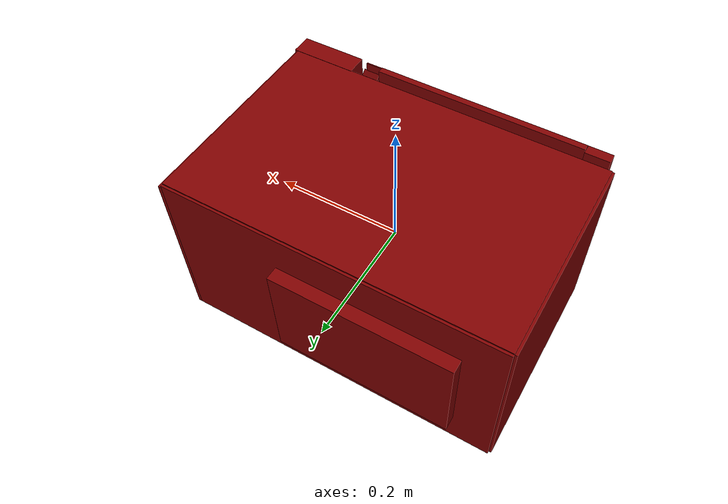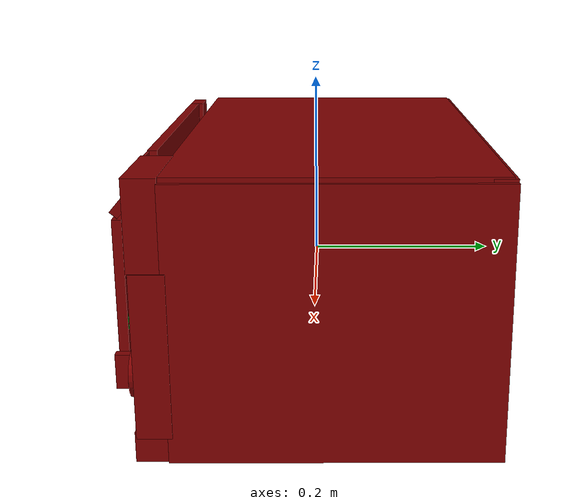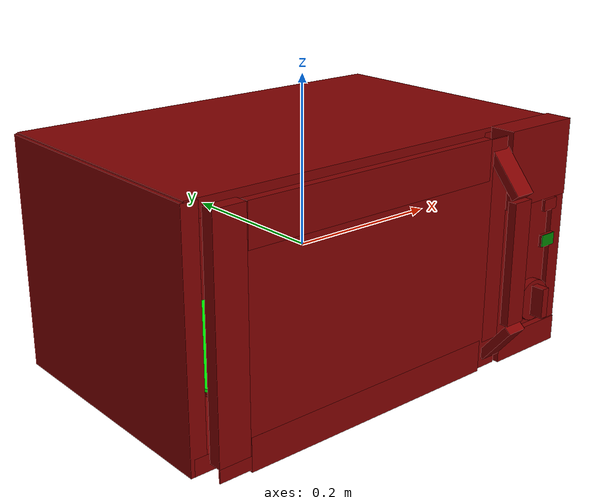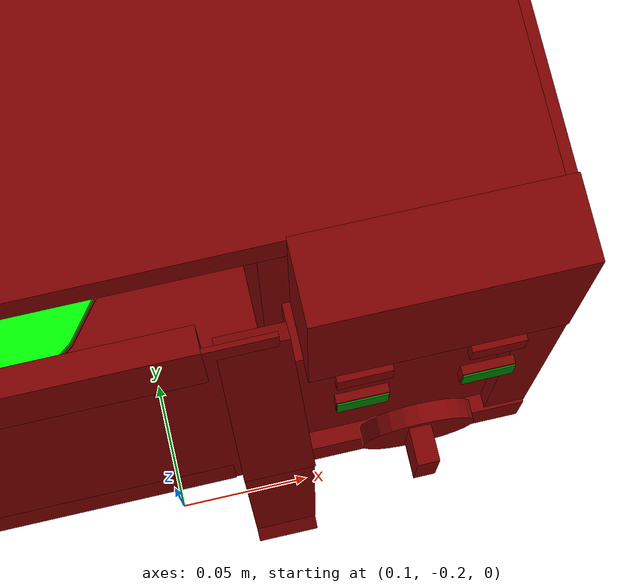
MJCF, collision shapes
<?xml version='1.0' encoding='UTF-8'?>
<mujoco model="model">
  <option timestep="0.002" gravity="0.0 0.0 -9.81"/>
  <compiler angle="radian"/>
  <asset>
    <mesh file="visuals/door.obj" name="door_vis"/>
    <mesh file="visuals/door_Clear.obj" name="door_Clear_vis"/>
    <mesh file="visuals/Body001.obj" name="Body001_vis"/>
    <mesh file="visuals/Button001.obj" name="Button001_vis"/>
    <mesh file="visuals/Button002.obj" name="Button002_vis"/>
    <mesh file="visuals/Button003.obj" name="Button003_vis"/>
    <mesh file="visuals/Button004.obj" name="Button004_vis"/>
    <mesh file="visuals/Disc001.obj" name="Disc001_vis"/>
    <mesh file="visuals/Knob001.obj" name="Knob001_vis"/>
    <texture file="visuals/T_BC001.png" name="Body001_material" type="2d"/>
    <material name="Body001_material" rgba="1 1 1 1.0" texture="Body001_material" shininess="0.4472135901451111" specular="0.6"/>
    <texture file="visuals/T_BC001.png" name="door_material" type="2d"/>
    <material name="door_material" rgba="1 1 1 1.0" texture="door_material" shininess="0.4472135901451111" specular="0.6"/>
    <texture file="visuals/T_BC001.png" name="door_Clear_material" type="2d"/>
    <material name="door_Clear_material" rgba="1 1 1 0.800000011920929" texture="door_Clear_material" shininess="0.5" specular="0.3103448502657381"/>
    <texture file="visuals/T_BC001.png" name="Button001_material" type="2d"/>
    <material name="Button001_material" rgba="1 1 1 1.0" texture="Button001_material" shininess="0.4472135901451111" specular="0.3103448502657381"/>
    <texture file="visuals/T_BC001.png" name="Button002_material" type="2d"/>
    <material name="Button002_material" rgba="1 1 1 1.0" texture="Button002_material" shininess="0.4472135901451111" specular="0.3103448502657381"/>
    <texture file="visuals/T_BC001.png" name="Button003_material" type="2d"/>
    <material name="Button003_material" rgba="1 1 1 1.0" texture="Button003_material" shininess="0.4472135901451111" specular="0.3103448502657381"/>
    <texture file="visuals/T_BC001.png" name="Button004_material" type="2d"/>
    <material name="Button004_material" rgba="1 1 1 1.0" texture="Button004_material" shininess="0.4472135901451111" specular="0.3103448502657381"/>
    <texture file="visuals/T_BC001.png" name="Disc001_material" type="2d"/>
    <material name="Disc001_material" rgba="1 1 1 1.0" texture="Disc001_material" shininess="0.4472135901451111" specular="0.3103448502657381"/>
    <texture file="visuals/T_BC001.png" name="Knob001_material" type="2d"/>
    <material name="Knob001_material" rgba="1 1 1 1.0" texture="Knob001_material" shininess="0.4472135901451111" specular="0.3103448502657381"/>
  </asset>
  <default>
    <default class="visual">
      <geom conaffinity="0" contype="0" group="1" type="mesh"/>
    </default>
    <default class="collision">
      <geom group="0" rgba="0.5 0 0 0.5"/>
    </default>
    <default class="spawn">
      <geom group="0" rgba="1 1 1 0.5" contype="0" conaffinity="0"/>
      <site group="0" rgba="1 1 1 0.5"/>
    </default>
    <default class="region">
      <geom group="1" conaffinity="0" contype="0" rgba="0 1 0 0"/>
    </default>
  </default>
  <worldbody>
    <body>
      <body name="object">
        <geom class="collision" type="box" pos="0.232262 -0.174923 -0.000803" size="0.010865318588912487 0.0003564048674888909 0.007287237793207169" quat="1.0 0.0 0.0 0.0" name="stop_button" rgba="0.0 0.5 0 0.5" density="1000.0"/>
        <geom class="collision" type="box" pos="0.179570 -0.174923 -0.000875" size="0.010752649046480656 0.0003564048674888909 0.007287243846803904" quat="1.0 0.0 0.0 0.0" name="start_button" rgba="0.0 0.5 0 0.5" density="1000.0"/>
        <geom class="collision" type="cylinder" pos="-0.043439 0.006099 -0.111753" size="0.1445775032043457 0.0020862373057752848" quat="1.0 0.0 0.0 0.0" name="tray" rgba="0 1 0 0.5" density="1000.0"/>
        <geom mesh="Body001_vis" type="mesh" solimp="0.998 0.998 0.001" solref="0.001 1" friction="0.95 0.3 0.1" class="visual" material="Body001_material"/>
        <geom class="collision" type="box" pos="0.000000 0.019767 -0.130377" size="0.2561173439025879 0.16050338745117188 0.009735439904034138" quat="1.0 0.0 0.0 0.0" density="1000.0"/>
        <geom class="collision" type="box" pos="-0.250989 0.019767 -0.000401" size="0.009735459461808205 0.16050338745117188 0.13971087336540222" quat="1.0 0.0 0.0 0.0" density="1000.0"/>
        <geom class="collision" type="box" pos="0.203624 0.021692 -0.002082" size="0.05675646662712097 0.1624283492565155 0.13803021609783173" quat="1.0 0.0 0.0 0.0" density="1000.0"/>
        <geom class="collision" type="box" pos="-0.000955 0.019767 0.131249" size="0.25599798560142517 0.16050338745117188 0.009735514409840107" quat="1.0 0.0 0.0 0.0" density="1000.0"/>
        <geom class="collision" type="box" pos="0.208909 -0.155831 0.095949" size="0.05112596973776817 0.016179263591766357 0.04533351957798004" quat="1.0 0.0 0.0 0.0" density="1000.0"/>
        <geom class="collision" type="box" pos="0.208909 -0.155831 -0.123160" size="0.05112596973776817 0.016179248690605164 0.015614388510584831" quat="1.0 0.0 0.0 0.0" density="1000.0"/>
        <geom class="collision" type="box" pos="-0.000955 0.172643 -0.000418" size="0.2559981048107147 0.011477652937173843 0.13969483971595764" quat="1.0 0.0 0.0 0.0" density="1000.0"/>
        <geom class="collision" type="box" pos="0.251090 -0.153270 -0.031276" size="0.009634836576879025 0.017295151948928833 0.0828639417886734" quat="1.0 0.0 0.0 0.0" density="1000.0"/>
        <geom class="collision" type="box" pos="0.207240 -0.151789 -0.028719" size="0.05279489979147911 0.012137813493609428 0.0843416228890419" quat="1.0 0.0 0.0 0.0" density="1000.0"/>
        <geom class="collision" type="box" pos="-0.060280 0.193403 -0.003717" size="0.13738931715488434 0.011110029183328152 0.08140583336353302" quat="1.0 0.0 0.0 0.0" density="1000.0"/>
        <body name="door">
          <joint axis="0.0 0.0 1.0" pos="-0.246424 -0.158546 0.001766" limited="true" name="microjoint" range="-1.5707963267948966 0.0" type="hinge" damping="1" frictionloss="1" armature=".01" stiffness="0.05"/>
          <geom mesh="door_vis" type="mesh" solimp="0.998 0.998 0.001" solref="0.001 1" friction="0.95 0.3 0.1" class="visual" material="door_material"/>
          <geom class="collision" type="box" pos="-0.230081 -0.164236 0.009675" size="0.018940173089504242 0.00777437724173069 0.12963473796844482" quat="1.0 0.0 0.0 0.0" density="1000.0"/>
          <geom class="collision" type="box" pos="0.139190 -0.166910 0.001538" size="0.013055304065346718 0.005100064445286989 0.10477712750434875" quat="1.0 0.0 0.0 0.0" density="1000.0"/>
          <geom class="collision" type="box" pos="-0.044346 -0.166910 0.115909" size="0.16593848168849945 0.0051000542007386684 0.023612966760993004" quat="1.0 0.0 0.0 0.0" density="1000.0"/>
          <geom class="collision" type="box" pos="-0.044346 -0.166910 -0.119109" size="0.16593848168849945 0.005100075621157885 0.01936274580657482" quat="1.0 0.0 0.0 0.0" density="1000.0"/>
          <geom class="collision" type="box" pos="0.139190 -0.201491 0.001192" size="0.013055302202701569 0.005230289418250322 0.07266724854707718" quat="1.0 0.0 0.0 0.0" name="door_handle_main" density="1000.0"/>
          <geom class="collision" type="box" pos="0.139190 -0.185609 0.100482" size="0.028987692669034004 0.005230325739830732 0.013055308721959591" quat="0.24476705491542816 0.6633921265602112 -0.24476711452007294 -0.6633920669555664" density="1000.0"/>
          <geom class="collision" type="box" pos="0.139190 -0.188903 -0.098722" size="0.028987696394324303 0.005230325274169445 0.013055308721959591" quat="0.23891746997833252 -0.6655211448669434 -0.23891784250736237 0.6655210852622986" density="1000.0"/>
          <geom class="collision" type="box" pos="-0.050304 -0.171029 0.001802" size="0.1985093206167221 0.000980594428256154 0.13694004714488983" quat="1.0 0.0 0.0 0.0" name="door_main" density="1000.0"/>
          <body name="door_Clear">
            <geom mesh="door_Clear_vis" type="mesh" solimp="0.998 0.998 0.001" solref="0.001 1" friction="0.95 0.3 0.1" class="visual" material="door_Clear_material"/>
            <geom class="collision" type="box" pos="-0.043364 -0.166222 -0.001170" size="0.16303934156894684 0.005230299197137356 0.08998294919729233" quat="1.0 0.0 0.0 0.0" density="1000.0"/>
          </body>
        </body>
        <body name="Button001">
          <joint axis="0.0 1.0 0.0" pos="0.179888 -0.172315 0.043285" limited="true" name="Button001_joint" range="0.0 0.002" type="slide" damping="1" frictionloss="1" armature=".01" stiffness="0.05"/>
          <geom mesh="Button001_vis" type="mesh" solimp="0.998 0.998 0.001" solref="0.001 1" friction="0.95 0.3 0.1" class="visual" material="Button001_material"/>
          <geom class="collision" type="box" pos="0.179614 -0.172625 0.043287" size="0.011165895499289036 0.0019255145452916622 0.006943767890334129" quat="1.0 0.0 0.0 0.0" density="1000.0"/>
        </body>
        <body name="Button002">
          <joint axis="0.0 1.0 0.0" pos="0.232316 -0.172315 0.043285" limited="true" name="Button002_joint" range="0.0 0.002" type="slide" damping="1" frictionloss="1" armature=".01" stiffness="0.05"/>
          <geom mesh="Button002_vis" type="mesh" solimp="0.998 0.998 0.001" solref="0.001 1" friction="0.95 0.3 0.1" class="visual" material="Button002_material"/>
          <geom class="collision" type="box" pos="0.232507 -0.172625 0.043230" size="0.010951997712254524 0.0019255145452916622 0.006847924552857876" quat="1.0 0.0 0.0 0.0" density="1000.0"/>
        </body>
        <body name="Button003">
          <joint axis="0.0 1.0 0.0" pos="0.232316 -0.172315 -0.001002" limited="true" name="Button003_joint" range="0.0 0.002" type="slide" damping="1" frictionloss="1" armature=".01" stiffness="0.05"/>
          <geom mesh="Button003_vis" type="mesh" solimp="0.998 0.998 0.001" solref="0.001 1" friction="0.95 0.3 0.1" class="visual" material="Button003_material"/>
          <geom class="collision" type="box" pos="0.179776 -0.172316 -0.000914" size="0.011165895499289036 0.0019255145452916622 0.007382688112556934" quat="1.0 0.0 0.0 0.0" density="1000.0"/>
        </body>
        <body name="Button004">
          <joint axis="0.0 1.0 0.0" pos="0.179888 -0.172315 -0.001002" limited="true" name="Button004_joint" range="0.0 0.002" type="slide" damping="1" frictionloss="1" armature=".01" stiffness="0.05"/>
          <geom mesh="Button004_vis" type="mesh" solimp="0.998 0.998 0.001" solref="0.001 1" friction="0.95 0.3 0.1" class="visual" material="Button004_material"/>
          <geom class="collision" type="box" pos="0.232236 -0.172316 -0.000794" size="0.011111618019640446 0.0019255145452916622 0.007342796307057142" quat="1.0 0.0 0.0 0.0" density="1000.0"/>
        </body>
        <body name="Disc001">
          <joint axis="0.0 0.0 1.0" pos="-0.043439 0.006099 -0.114229" limited="false" name="Disc001_joint" range="0 360" type="hinge" damping="1" frictionloss="1" armature=".01" stiffness="0.05"/>
          <geom mesh="Disc001_vis" type="mesh" solimp="0.998 0.998 0.001" solref="0.001 1" friction="0.95 0.3 0.1" class="visual" material="Disc001_material"/>
          <geom class="collision" type="cylinder" pos="-0.043439 0.006099 -0.117168" size="0.1445775032043457 0.0016238843090832233" quat="1.0 0.0 0.0 0.0" density="1000.0"/>
        </body>
        <body name="Knob001">
          <joint axis="0.0 1.0 0.0" pos="0.204503 -0.184219 -0.066945" limited="true" name="Knob001_joint" range="0.0 3.961897402027128" type="hinge" damping="0.05" armature="0.001"/>
          <geom mesh="Knob001_vis" type="mesh" solimp="0.998 0.998 0.001" solref="0.001 1" friction="0.95 0.3 0.1" class="visual" material="Knob001_material"/>
          <geom class="collision" type="cylinder" pos="0.205114 -0.177476 -0.068541" size="0.025236716493964195 0.004440062679350376" quat="0.7071068286895752 0.7071067690849304 0.0 0.0" density="1000.0"/>
          <geom class="collision" type="box" pos="0.204613 -0.190112 -0.067354" size="0.004965366329997778 0.00836547464132309 0.018377626314759254" quat="1.0 0.0 0.0 0.0" density="1000.0"/>
        </body>
        <geom class="region" name="reg_int" type="box" pos="-0.047193 0.008356000000000002 0.0004325000000000023" size="0.194828 0.152809 0.1218485"/>
        <geom class="region" name="reg_main" type="box" pos="0.0 0.016251500000000002 0.0" size="0.260725 0.1882615 0.141282"/>
      </body>
    </body>
  </worldbody>
  <actuator>
    <motor name="microjoint_actuator" joint="microjoint" gear="10"/>
    <motor name="Button001_joint_actuator" joint="Button001_joint" gear="0.2"/>
    <motor name="Button002_joint_actuator" joint="Button002_joint" gear="0.2"/>
    <motor name="Button003_joint_actuator" joint="Button003_joint" gear="0.2"/>
    <motor name="Button004_joint_actuator" joint="Button004_joint" gear="0.2"/>
    <motor name="Disc001_joint_actuator" joint="Disc001_joint" gear="10"/>
    <motor name="Knob001_joint_actuator" joint="Knob001_joint" gear="10"/>
  </actuator>
</mujoco>
